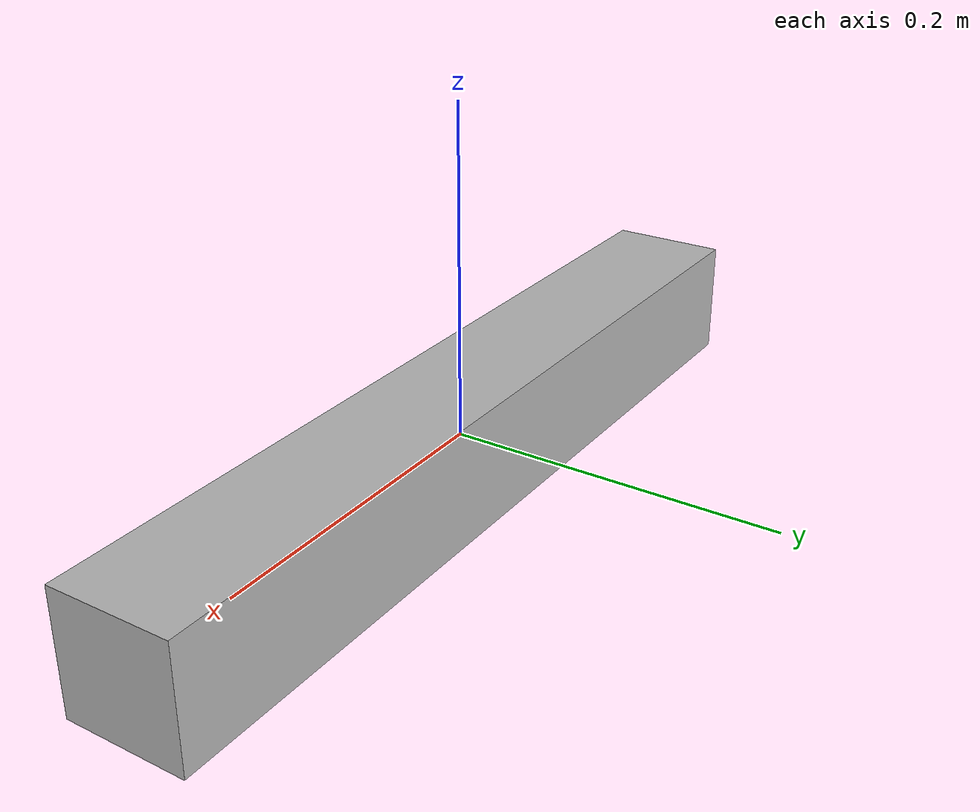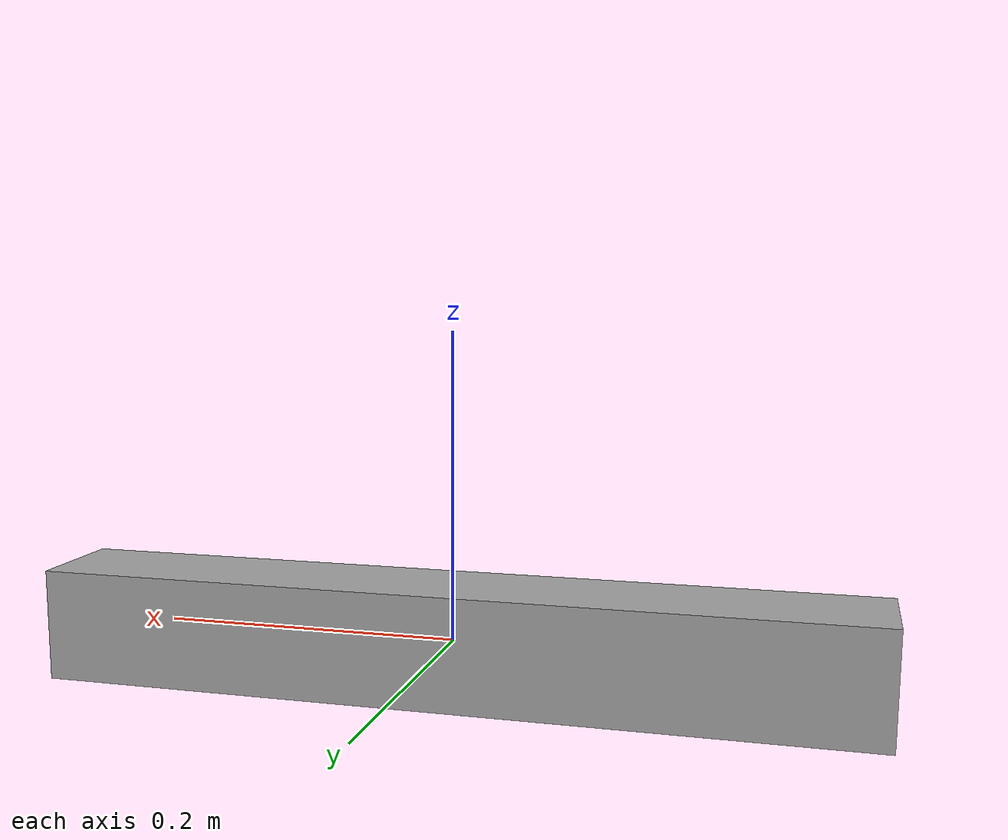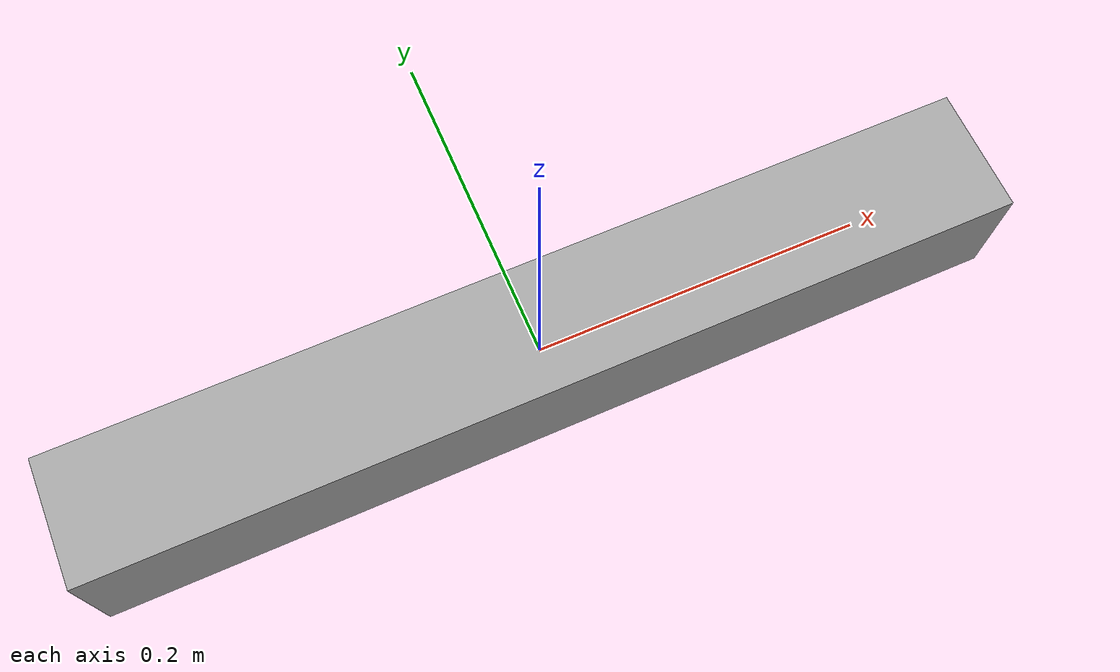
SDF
<?xml version="1.0"?>
<sdf version="1.7">
  <model name="post_alt">
    <link name="post_body">
      <pose>0.0 0.0 0.0 0.0 0.0 0.0</pose>
      <visual name="post_body_vis">
        <pose>0.0 0.0 0.0 0.0 0.0 0.0</pose>
        <geometry>
          <box>
            <size>0.55 0.075 0.075</size>
          </box>
        </geometry>
      </visual>
      <collision name="post_body_collision">
        <pose>0 0 0 0 0 0</pose>
        <geometry>
          <box>
            <size>0.55 0.075 0.075</size>
          </box>
        </geometry>
      </collision>
      <inertial>
        <pose>0 0 0 0 0 0</pose>
        <mass>1.3</mass>
        <inertia>
          <ixx>1.1e-2</ixx>
          <ixy>0</ixy>
          <ixz>0</ixz>
          <iyy>1.1e-2</iyy>
          <iyz>0</iyz>
          <izz>1.1e-2</izz>
        </inertia>
      </inertial>
    </link>
  </model>
</sdf>
